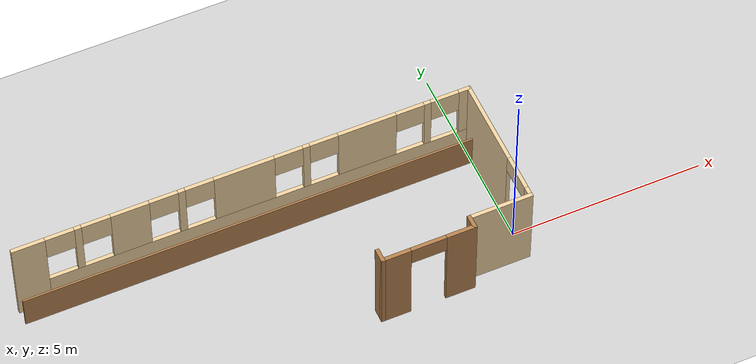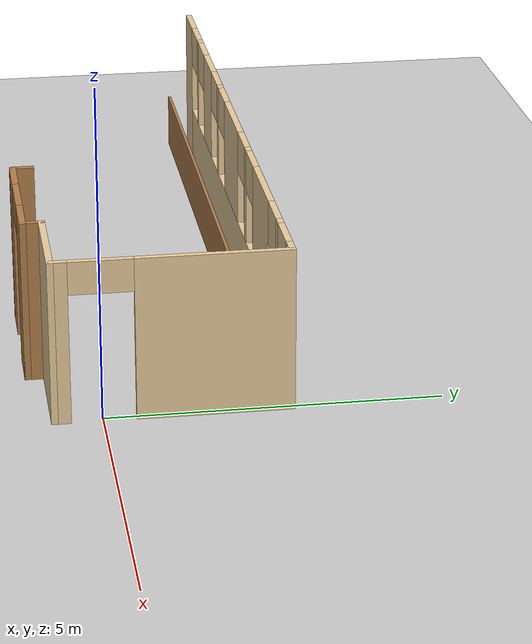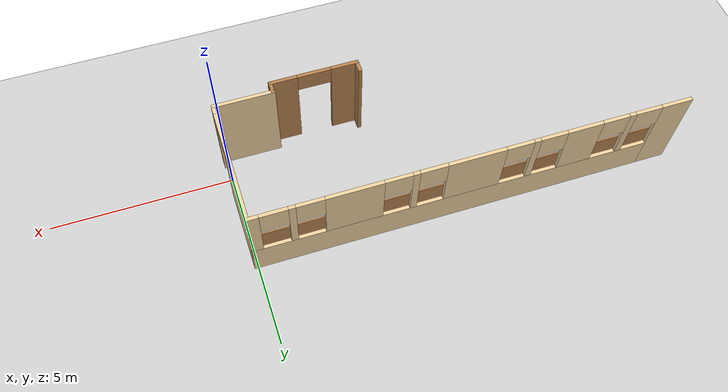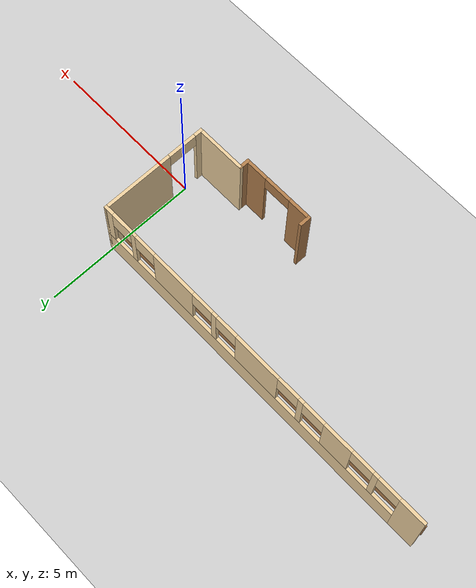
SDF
<sdf version="1.6">
 <world name="default">
  <model name="ground_plane">
   <static>1</static>
   <link name="link">
    <collision name="collision">
     <geometry><plane><normal>0 0 1</normal><size>100 100</size></plane></geometry>
     <surface><friction><ode><mu>100</mu><mu2>50</mu2></ode></friction></surface>
    </collision>
    <visual name="visual">
     <cast_shadows>0</cast_shadows>
     <geometry><plane><normal>0 0 1</normal><size>100 100</size></plane></geometry>
     <material>
      <script><uri>file://media/materials/scripts/gazebo.material</uri><name>Gazebo/Grey</name></script>
     </material>
    </visual>
   </link>
  </model>
  <model name="LawHall_Floor4.sdf">
   <link name="Wall_0">
    <pose>0 1.8775 0 0 -0 0</pose>
    <visual name="Wall_0_Visual_4">
     <pose>-1.606 0 1.72 0 -0 0</pose>
     <geometry><box><size>0.178 0.1 1.56</size></box></geometry>
     <material>
      <script><uri>file://media/materials/scripts/gazebo.material</uri><name>Gazebo/Grey</name></script>
      <ambient>0.921569 0.807843 0.615686 1</ambient>
      <diffuse>0.7 0.7 0.7 1</diffuse>
      <specular>0.01 0.01 0.01 1</specular>
      <emissive>0 0 0 1</emissive>
     </material>
    </visual>
    <visual name="Wall_0_Visual_15">
     <pose>2.034 0 2.158 0 -0 0</pose>
     <geometry><box><size>0.73 0.1 0.684</size></box></geometry>
     <material>
      <script><uri>file://media/materials/scripts/gazebo.material</uri><name>Gazebo/Grey</name></script>
      <ambient>0.921569 0.807843 0.615686 1</ambient>
      <diffuse>0.7 0.7 0.7 1</diffuse>
      <specular>0.01 0.01 0.01 1</specular>
      <emissive>0 0 0 1</emissive>
     </material>
    </visual>
    <visual name="Wall_0_Visual_0">
     <pose>-5.4555 0 1.25 0 -0 0</pose>
     <geometry><box><size>0.841 0.1 2.5</size></box></geometry>
     <material>
      <script><uri>file://media/materials/scripts/gazebo.material</uri><name>Gazebo/Grey</name></script>
      <ambient>0.921569 0.807843 0.615686 1</ambient>
      <diffuse>0.7 0.7 0.7 1</diffuse>
      <specular>0.01 0.01 0.01 1</specular>
      <emissive>0 0 0 1</emissive>
     </material>
    </visual>
    <visual name="Wall_0_Visual_7">
     <pose>3.154 0 1.72 0 -0 0</pose>
     <geometry><box><size>1.51 0.1 1.56</size></box></geometry>
     <material>
      <script><uri>file://media/materials/scripts/gazebo.material</uri><name>Gazebo/Grey</name></script>
      <ambient>0.921569 0.807843 0.615686 1</ambient>
      <diffuse>0.7 0.7 0.7 1</diffuse>
      <specular>0.01 0.01 0.01 1</specular>
      <emissive>0 0 0 1</emissive>
     </material>
    </visual>
    <visual name="Wall_0_Visual_17">
     <pose>5.184 0 2.158 0 -0 0</pose>
     <geometry><box><size>0.73 0.1 0.684</size></box></geometry>
     <material>
      <script><uri>file://media/materials/scripts/gazebo.material</uri><name>Gazebo/Grey</name></script>
      <ambient>0.921569 0.807843 0.615686 1</ambient>
      <diffuse>0.7 0.7 0.7 1</diffuse>
      <specular>0.01 0.01 0.01 1</specular>
      <emissive>0 0 0 1</emissive>
     </material>
    </visual>
    <visual name="Wall_0_Visual_6">
     <pose>1.5805 0 1.72 0 -0 0</pose>
     <geometry><box><size>0.177 0.1 1.56</size></box></geometry>
     <material>
      <script><uri>file://media/materials/scripts/gazebo.material</uri><name>Gazebo/Grey</name></script>
      <ambient>0.921569 0.807843 0.615686 1</ambient>
      <diffuse>0.7 0.7 0.7 1</diffuse>
      <specular>0.01 0.01 0.01 1</specular>
      <emissive>0 0 0 1</emissive>
     </material>
    </visual>
    <visual name="Wall_0_Visual_2">
     <pose>-4.216 0 1.72 0 -0 0</pose>
     <geometry><box><size>0.178 0.1 1.56</size></box></geometry>
     <material>
      <script><uri>file://media/materials/scripts/gazebo.material</uri><name>Gazebo/Grey</name></script>
      <ambient>0.921569 0.807843 0.615686 1</ambient>
      <diffuse>0.7 0.7 0.7 1</diffuse>
      <specular>0.01 0.01 0.01 1</specular>
      <emissive>0 0 0 1</emissive>
     </material>
    </visual>
    <visual name="Wall_0_Visual_9">
     <pose>5.7125 0 1.72 0 -0 0</pose>
     <geometry><box><size>0.327 0.1 1.56</size></box></geometry>
     <material>
      <script><uri>file://media/materials/scripts/gazebo.material</uri><name>Gazebo/Grey</name></script>
      <ambient>0.921569 0.807843 0.615686 1</ambient>
      <diffuse>0.7 0.7 0.7 1</diffuse>
      <specular>0.01 0.01 0.01 1</specular>
      <emissive>0 0 0 1</emissive>
     </material>
    </visual>
    <visual name="Wall_0_Visual_16">
     <pose>4.274 0 2.158 0 -0 0</pose>
     <geometry><box><size>0.73 0.1 0.684</size></box></geometry>
     <material>
      <script><uri>file://media/materials/scripts/gazebo.material</uri><name>Gazebo/Grey</name></script>
      <ambient>0.921569 0.807843 0.615686 1</ambient>
      <diffuse>0.7 0.7 0.7 1</diffuse>
      <specular>0.01 0.01 0.01 1</specular>
      <emissive>0 0 0 1</emissive>
     </material>
    </visual>
    <visual name="Wall_0_Visual_10">
     <pose>-4.67 0 2.158 0 -0 0</pose>
     <geometry><box><size>0.73 0.1 0.684</size></box></geometry>
     <material>
      <script><uri>file://media/materials/scripts/gazebo.material</uri><name>Gazebo/Grey</name></script>
      <ambient>0.921569 0.807843 0.615686 1</ambient>
      <diffuse>0.7 0.7 0.7 1</diffuse>
      <specular>0.01 0.01 0.01 1</specular>
      <emissive>0 0 0 1</emissive>
     </material>
    </visual>
    <visual name="Wall_0_Visual_11">
     <pose>-3.762 0 2.158 0 -0 0</pose>
     <geometry><box><size>0.73 0.1 0.684</size></box></geometry>
     <material>
      <script><uri>file://media/materials/scripts/gazebo.material</uri><name>Gazebo/Grey</name></script>
      <ambient>0.921569 0.807843 0.615686 1</ambient>
      <diffuse>0.7 0.7 0.7 1</diffuse>
      <specular>0.01 0.01 0.01 1</specular>
      <emissive>0 0 0 1</emissive>
     </material>
    </visual>
    <visual name="Wall_0_Visual_5">
     <pose>-0.0125 0 1.72 0 -0 0</pose>
     <geometry><box><size>1.549 0.1 1.56</size></box></geometry>
     <material>
      <script><uri>file://media/materials/scripts/gazebo.material</uri><name>Gazebo/Grey</name></script>
      <ambient>0.921569 0.807843 0.615686 1</ambient>
      <diffuse>0.7 0.7 0.7 1</diffuse>
      <specular>0.01 0.01 0.01 1</specular>
      <emissive>0 0 0 1</emissive>
     </material>
    </visual>
    <visual name="Wall_0_Visual_14">
     <pose>1.127 0 2.158 0 -0 0</pose>
     <geometry><box><size>0.73 0.1 0.684</size></box></geometry>
     <material>
      <script><uri>file://media/materials/scripts/gazebo.material</uri><name>Gazebo/Grey</name></script>
      <ambient>0.921569 0.807843 0.615686 1</ambient>
      <diffuse>0.7 0.7 0.7 1</diffuse>
      <specular>0.01 0.01 0.01 1</specular>
      <emissive>0 0 0 1</emissive>
     </material>
    </visual>
    <visual name="Wall_0_Visual_13">
     <pose>-1.152 0 2.158 0 -0 0</pose>
     <geometry><box><size>0.73 0.1 0.684</size></box></geometry>
     <material>
      <script><uri>file://media/materials/scripts/gazebo.material</uri><name>Gazebo/Grey</name></script>
      <ambient>0.921569 0.807843 0.615686 1</ambient>
      <diffuse>0.7 0.7 0.7 1</diffuse>
      <specular>0.01 0.01 0.01 1</specular>
      <emissive>0 0 0 1</emissive>
     </material>
    </visual>
    <visual name="Wall_0_Visual_12">
     <pose>-2.06 0 2.158 0 -0 0</pose>
     <geometry><box><size>0.73 0.1 0.684</size></box></geometry>
     <material>
      <script><uri>file://media/materials/scripts/gazebo.material</uri><name>Gazebo/Grey</name></script>
      <ambient>0.921569 0.807843 0.615686 1</ambient>
      <diffuse>0.7 0.7 0.7 1</diffuse>
      <specular>0.01 0.01 0.01 1</specular>
      <emissive>0 0 0 1</emissive>
     </material>
    </visual>
    <visual name="Wall_0_Visual_8">
     <pose>4.729 0 1.72 0 -0 0</pose>
     <geometry><box><size>0.18 0.1 1.56</size></box></geometry>
     <material>
      <script><uri>file://media/materials/scripts/gazebo.material</uri><name>Gazebo/Grey</name></script>
      <ambient>0.921569 0.807843 0.615686 1</ambient>
      <diffuse>0.7 0.7 0.7 1</diffuse>
      <specular>0.01 0.01 0.01 1</specular>
      <emissive>0 0 0 1</emissive>
     </material>
    </visual>
    <visual name="Wall_0_Visual_3">
     <pose>-2.911 0 1.72 0 -0 0</pose>
     <geometry><box><size>0.972 0.1 1.56</size></box></geometry>
     <material>
      <script><uri>file://media/materials/scripts/gazebo.material</uri><name>Gazebo/Grey</name></script>
      <ambient>0.921569 0.807843 0.615686 1</ambient>
      <diffuse>0.7 0.7 0.7 1</diffuse>
      <specular>0.01 0.01 0.01 1</specular>
      <emissive>0 0 0 1</emissive>
     </material>
    </visual>
    <visual name="Wall_0_Visual_1">
     <pose>0.4205 0 0.47 0 -0 0</pose>
     <geometry><box><size>10.911 0.1 0.94</size></box></geometry>
     <material>
      <script><uri>file://media/materials/scripts/gazebo.material</uri><name>Gazebo/Grey</name></script>
      <ambient>0.921569 0.807843 0.615686 1</ambient>
      <diffuse>0.7 0.7 0.7 1</diffuse>
      <specular>0.01 0.01 0.01 1</specular>
      <emissive>0 0 0 1</emissive>
     </material>
    </visual>
    <collision name="Wall_0_Collision_11">
     <pose>-3.762 0 2.158 0 -0 0</pose>
     <geometry><box><size>0.73 0.1 0.684</size></box></geometry>
     <surface>
      <friction>
       <ode><mu>1</mu><mu2>1</mu2><fdir1>0 0 0</fdir1><slip1>0</slip1><slip2>0</slip2></ode>
       <torsional>
        <coefficient>1</coefficient>
        <patch_radius>0</patch_radius>
        <surface_radius>0</surface_radius>
        <use_patch_radius>1</use_patch_radius>
        <ode><slip>0</slip></ode>
       </torsional>
      </friction>
      <bounce><restitution_coefficient>0</restitution_coefficient><threshold>1e+06</threshold></bounce>
      <contact>
       <collide_without_contact>0</collide_without_contact>
       <collide_without_contact_bitmask>1</collide_without_contact_bitmask>
       <collide_bitmask>1</collide_bitmask>
       <ode>
        <soft_cfm>0</soft_cfm>
        <soft_erp>0.2</soft_erp>
        <kp>1e+13</kp>
        <kd>1</kd>
        <max_vel>0.01</max_vel>
        <min_depth>0</min_depth>
       </ode>
       <bullet>
        <split_impulse>1</split_impulse>
        <split_impulse_penetration_threshold>-0.01</split_impulse_penetration_threshold>
        <soft_cfm>0</soft_cfm>
        <soft_erp>0.2</soft_erp>
        <kp>1e+13</kp>
        <kd>1</kd>
       </bullet>
      </contact>
     </surface>
    </collision>
    <collision name="Wall_0_Collision_7">
     <pose>3.154 0 1.72 0 -0 0</pose>
     <geometry><box><size>1.51 0.1 1.56</size></box></geometry>
     <surface>
      <friction>
       <ode><mu>1</mu><mu2>1</mu2><fdir1>0 0 0</fdir1><slip1>0</slip1><slip2>0</slip2></ode>
       <torsional>
        <coefficient>1</coefficient>
        <patch_radius>0</patch_radius>
        <surface_radius>0</surface_radius>
        <use_patch_radius>1</use_patch_radius>
        <ode><slip>0</slip></ode>
       </torsional>
      </friction>
      <bounce><restitution_coefficient>0</restitution_coefficient><threshold>1e+06</threshold></bounce>
      <contact>
       <collide_without_contact>0</collide_without_contact>
       <collide_without_contact_bitmask>1</collide_without_contact_bitmask>
       <collide_bitmask>1</collide_bitmask>
       <ode>
        <soft_cfm>0</soft_cfm>
        <soft_erp>0.2</soft_erp>
        <kp>1e+13</kp>
        <kd>1</kd>
        <max_vel>0.01</max_vel>
        <min_depth>0</min_depth>
       </ode>
       <bullet>
        <split_impulse>1</split_impulse>
        <split_impulse_penetration_threshold>-0.01</split_impulse_penetration_threshold>
        <soft_cfm>0</soft_cfm>
        <soft_erp>0.2</soft_erp>
        <kp>1e+13</kp>
        <kd>1</kd>
       </bullet>
      </contact>
     </surface>
    </collision>
    <collision name="Wall_0_Collision_14">
     <pose>1.127 0 2.158 0 -0 0</pose>
     <geometry><box><size>0.73 0.1 0.684</size></box></geometry>
     <surface>
      <friction>
       <ode><mu>1</mu><mu2>1</mu2><fdir1>0 0 0</fdir1><slip1>0</slip1><slip2>0</slip2></ode>
       <torsional>
        <coefficient>1</coefficient>
        <patch_radius>0</patch_radius>
        <surface_radius>0</surface_radius>
        <use_patch_radius>1</use_patch_radius>
        <ode><slip>0</slip></ode>
       </torsional>
      </friction>
      <bounce><restitution_coefficient>0</restitution_coefficient><threshold>1e+06</threshold></bounce>
      <contact>
       <collide_without_contact>0</collide_without_contact>
       <collide_without_contact_bitmask>1</collide_without_contact_bitmask>
       <collide_bitmask>1</collide_bitmask>
       <ode>
        <soft_cfm>0</soft_cfm>
        <soft_erp>0.2</soft_erp>
        <kp>1e+13</kp>
        <kd>1</kd>
        <max_vel>0.01</max_vel>
        <min_depth>0</min_depth>
       </ode>
       <bullet>
        <split_impulse>1</split_impulse>
        <split_impulse_penetration_threshold>-0.01</split_impulse_penetration_threshold>
        <soft_cfm>0</soft_cfm>
        <soft_erp>0.2</soft_erp>
        <kp>1e+13</kp>
        <kd>1</kd>
       </bullet>
      </contact>
     </surface>
    </collision>
    <collision name="Wall_0_Collision_5">
     <pose>-0.0125 0 1.72 0 -0 0</pose>
     <geometry><box><size>1.549 0.1 1.56</size></box></geometry>
     <surface>
      <friction>
       <ode><mu>1</mu><mu2>1</mu2><fdir1>0 0 0</fdir1><slip1>0</slip1><slip2>0</slip2></ode>
       <torsional>
        <coefficient>1</coefficient>
        <patch_radius>0</patch_radius>
        <surface_radius>0</surface_radius>
        <use_patch_radius>1</use_patch_radius>
        <ode><slip>0</slip></ode>
       </torsional>
      </friction>
      <bounce><restitution_coefficient>0</restitution_coefficient><threshold>1e+06</threshold></bounce>
      <contact>
       <collide_without_contact>0</collide_without_contact>
       <collide_without_contact_bitmask>1</collide_without_contact_bitmask>
       <collide_bitmask>1</collide_bitmask>
       <ode>
        <soft_cfm>0</soft_cfm>
        <soft_erp>0.2</soft_erp>
        <kp>1e+13</kp>
        <kd>1</kd>
        <max_vel>0.01</max_vel>
        <min_depth>0</min_depth>
       </ode>
       <bullet>
        <split_impulse>1</split_impulse>
        <split_impulse_penetration_threshold>-0.01</split_impulse_penetration_threshold>
        <soft_cfm>0</soft_cfm>
        <soft_erp>0.2</soft_erp>
        <kp>1e+13</kp>
        <kd>1</kd>
       </bullet>
      </contact>
     </surface>
    </collision>
    <collision name="Wall_0_Collision_9">
     <pose>5.7125 0 1.72 0 -0 0</pose>
     <geometry><box><size>0.327 0.1 1.56</size></box></geometry>
     <surface>
      <friction>
       <ode><mu>1</mu><mu2>1</mu2><fdir1>0 0 0</fdir1><slip1>0</slip1><slip2>0</slip2></ode>
       <torsional>
        <coefficient>1</coefficient>
        <patch_radius>0</patch_radius>
        <surface_radius>0</surface_radius>
        <use_patch_radius>1</use_patch_radius>
        <ode><slip>0</slip></ode>
       </torsional>
      </friction>
      <bounce><restitution_coefficient>0</restitution_coefficient><threshold>1e+06</threshold></bounce>
      <contact>
       <collide_without_contact>0</collide_without_contact>
       <collide_without_contact_bitmask>1</collide_without_contact_bitmask>
       <collide_bitmask>1</collide_bitmask>
       <ode>
        <soft_cfm>0</soft_cfm>
        <soft_erp>0.2</soft_erp>
        <kp>1e+13</kp>
        <kd>1</kd>
        <max_vel>0.01</max_vel>
        <min_depth>0</min_depth>
       </ode>
       <bullet>
        <split_impulse>1</split_impulse>
        <split_impulse_penetration_threshold>-0.01</split_impulse_penetration_threshold>
        <soft_cfm>0</soft_cfm>
        <soft_erp>0.2</soft_erp>
        <kp>1e+13</kp>
        <kd>1</kd>
       </bullet>
      </contact>
     </surface>
    </collision>
    <collision name="Wall_0_Collision_2">
     <pose>-4.216 0 1.72 0 -0 0</pose>
     <geometry><box><size>0.178 0.1 1.56</size></box></geometry>
     <surface>
      <friction>
       <ode><mu>1</mu><mu2>1</mu2><fdir1>0 0 0</fdir1><slip1>0</slip1><slip2>0</slip2></ode>
       <torsional>
        <coefficient>1</coefficient>
        <patch_radius>0</patch_radius>
        <surface_radius>0</surface_radius>
        <use_patch_radius>1</use_patch_radius>
        <ode><slip>0</slip></ode>
       </torsional>
      </friction>
      <bounce><restitution_coefficient>0</restitution_coefficient><threshold>1e+06</threshold></bounce>
      <contact>
       <collide_without_contact>0</collide_without_contact>
       <collide_without_contact_bitmask>1</collide_without_contact_bitmask>
       <collide_bitmask>1</collide_bitmask>
       <ode>
        <soft_cfm>0</soft_cfm>
        <soft_erp>0.2</soft_erp>
        <kp>1e+13</kp>
        <kd>1</kd>
        <max_vel>0.01</max_vel>
        <min_depth>0</min_depth>
       </ode>
       <bullet>
        <split_impulse>1</split_impulse>
        <split_impulse_penetration_threshold>-0.01</split_impulse_penetration_threshold>
        <soft_cfm>0</soft_cfm>
        <soft_erp>0.2</soft_erp>
        <kp>1e+13</kp>
        <kd>1</kd>
       </bullet>
      </contact>
     </surface>
    </collision>
    <collision name="Wall_0_Collision_3">
     <pose>-2.911 0 1.72 0 -0 0</pose>
     <geometry><box><size>0.972 0.1 1.56</size></box></geometry>
     <surface>
      <friction>
       <ode><mu>1</mu><mu2>1</mu2><fdir1>0 0 0</fdir1><slip1>0</slip1><slip2>0</slip2></ode>
       <torsional>
        <coefficient>1</coefficient>
        <patch_radius>0</patch_radius>
        <surface_radius>0</surface_radius>
        <use_patch_radius>1</use_patch_radius>
        <ode><slip>0</slip></ode>
       </torsional>
      </friction>
      <bounce><restitution_coefficient>0</restitution_coefficient><threshold>1e+06</threshold></bounce>
      <contact>
       <collide_without_contact>0</collide_without_contact>
       <collide_without_contact_bitmask>1</collide_without_contact_bitmask>
       <collide_bitmask>1</collide_bitmask>
       <ode>
        <soft_cfm>0</soft_cfm>
        <soft_erp>0.2</soft_erp>
        <kp>1e+13</kp>
        <kd>1</kd>
        <max_vel>0.01</max_vel>
        <min_depth>0</min_depth>
       </ode>
       <bullet>
        <split_impulse>1</split_impulse>
        <split_impulse_penetration_threshold>-0.01</split_impulse_penetration_threshold>
        <soft_cfm>0</soft_cfm>
        <soft_erp>0.2</soft_erp>
        <kp>1e+13</kp>
        <kd>1</kd>
       </bullet>
      </contact>
     </surface>
    </collision>
    <collision name="Wall_0_Collision_6">
     <pose>1.5805 0 1.72 0 -0 0</pose>
     <geometry><box><size>0.177 0.1 1.56</size></box></geometry>
     <surface>
      <friction>
       <ode><mu>1</mu><mu2>1</mu2><fdir1>0 0 0</fdir1><slip1>0</slip1><slip2>0</slip2></ode>
       <torsional>
        <coefficient>1</coefficient>
        <patch_radius>0</patch_radius>
        <surface_radius>0</surface_radius>
        <use_patch_radius>1</use_patch_radius>
        <ode><slip>0</slip></ode>
       </torsional>
      </friction>
      <bounce><restitution_coefficient>0</restitution_coefficient><threshold>1e+06</threshold></bounce>
      <contact>
       <collide_without_contact>0</collide_without_contact>
       <collide_without_contact_bitmask>1</collide_without_contact_bitmask>
       <collide_bitmask>1</collide_bitmask>
       <ode>
        <soft_cfm>0</soft_cfm>
        <soft_erp>0.2</soft_erp>
        <kp>1e+13</kp>
        <kd>1</kd>
        <max_vel>0.01</max_vel>
        <min_depth>0</min_depth>
       </ode>
       <bullet>
        <split_impulse>1</split_impulse>
        <split_impulse_penetration_threshold>-0.01</split_impulse_penetration_threshold>
        <soft_cfm>0</soft_cfm>
        <soft_erp>0.2</soft_erp>
        <kp>1e+13</kp>
        <kd>1</kd>
       </bullet>
      </contact>
     </surface>
    </collision>
    <collision name="Wall_0_Collision_13">
     <pose>-1.152 0 2.158 0 -0 0</pose>
     <geometry><box><size>0.73 0.1 0.684</size></box></geometry>
     <surface>
      <friction>
       <ode><mu>1</mu><mu2>1</mu2><fdir1>0 0 0</fdir1><slip1>0</slip1><slip2>0</slip2></ode>
       <torsional>
        <coefficient>1</coefficient>
        <patch_radius>0</patch_radius>
        <surface_radius>0</surface_radius>
        <use_patch_radius>1</use_patch_radius>
        <ode><slip>0</slip></ode>
       </torsional>
      </friction>
      <bounce><restitution_coefficient>0</restitution_coefficient><threshold>1e+06</threshold></bounce>
      <contact>
       <collide_without_contact>0</collide_without_contact>
       <collide_without_contact_bitmask>1</collide_without_contact_bitmask>
       <collide_bitmask>1</collide_bitmask>
       <ode>
        <soft_cfm>0</soft_cfm>
        <soft_erp>0.2</soft_erp>
        <kp>1e+13</kp>
        <kd>1</kd>
        <max_vel>0.01</max_vel>
        <min_depth>0</min_depth>
       </ode>
       <bullet>
        <split_impulse>1</split_impulse>
        <split_impulse_penetration_threshold>-0.01</split_impulse_penetration_threshold>
        <soft_cfm>0</soft_cfm>
        <soft_erp>0.2</soft_erp>
        <kp>1e+13</kp>
        <kd>1</kd>
       </bullet>
      </contact>
     </surface>
    </collision>
    <collision name="Wall_0_Collision_15">
     <pose>2.034 0 2.158 0 -0 0</pose>
     <geometry><box><size>0.73 0.1 0.684</size></box></geometry>
     <surface>
      <friction>
       <ode><mu>1</mu><mu2>1</mu2><fdir1>0 0 0</fdir1><slip1>0</slip1><slip2>0</slip2></ode>
       <torsional>
        <coefficient>1</coefficient>
        <patch_radius>0</patch_radius>
        <surface_radius>0</surface_radius>
        <use_patch_radius>1</use_patch_radius>
        <ode><slip>0</slip></ode>
       </torsional>
      </friction>
      <bounce><restitution_coefficient>0</restitution_coefficient><threshold>1e+06</threshold></bounce>
      <contact>
       <collide_without_contact>0</collide_without_contact>
       <collide_without_contact_bitmask>1</collide_without_contact_bitmask>
       <collide_bitmask>1</collide_bitmask>
       <ode>
        <soft_cfm>0</soft_cfm>
        <soft_erp>0.2</soft_erp>
        <kp>1e+13</kp>
        <kd>1</kd>
        <max_vel>0.01</max_vel>
        <min_depth>0</min_depth>
       </ode>
       <bullet>
        <split_impulse>1</split_impulse>
        <split_impulse_penetration_threshold>-0.01</split_impulse_penetration_threshold>
        <soft_cfm>0</soft_cfm>
        <soft_erp>0.2</soft_erp>
        <kp>1e+13</kp>
        <kd>1</kd>
       </bullet>
      </contact>
     </surface>
    </collision>
    <collision name="Wall_0_Collision_1">
     <pose>0.4205 0 0.47 0 -0 0</pose>
     <geometry><box><size>10.911 0.1 0.94</size></box></geometry>
     <surface>
      <friction>
       <ode><mu>1</mu><mu2>1</mu2><fdir1>0 0 0</fdir1><slip1>0</slip1><slip2>0</slip2></ode>
       <torsional>
        <coefficient>1</coefficient>
        <patch_radius>0</patch_radius>
        <surface_radius>0</surface_radius>
        <use_patch_radius>1</use_patch_radius>
        <ode><slip>0</slip></ode>
       </torsional>
      </friction>
      <bounce><restitution_coefficient>0</restitution_coefficient><threshold>1e+06</threshold></bounce>
      <contact>
       <collide_without_contact>0</collide_without_contact>
       <collide_without_contact_bitmask>1</collide_without_contact_bitmask>
       <collide_bitmask>1</collide_bitmask>
       <ode>
        <soft_cfm>0</soft_cfm>
        <soft_erp>0.2</soft_erp>
        <kp>1e+13</kp>
        <kd>1</kd>
        <max_vel>0.01</max_vel>
        <min_depth>0</min_depth>
       </ode>
       <bullet>
        <split_impulse>1</split_impulse>
        <split_impulse_penetration_threshold>-0.01</split_impulse_penetration_threshold>
        <soft_cfm>0</soft_cfm>
        <soft_erp>0.2</soft_erp>
        <kp>1e+13</kp>
        <kd>1</kd>
       </bullet>
      </contact>
     </surface>
    </collision>
    <collision name="Wall_0_Collision_16">
     <pose>4.274 0 2.158 0 -0 0</pose>
     <geometry><box><size>0.73 0.1 0.684</size></box></geometry>
     <surface>
      <friction>
       <ode><mu>1</mu><mu2>1</mu2><fdir1>0 0 0</fdir1><slip1>0</slip1><slip2>0</slip2></ode>
       <torsional>
        <coefficient>1</coefficient>
        <patch_radius>0</patch_radius>
        <surface_radius>0</surface_radius>
        <use_patch_radius>1</use_patch_radius>
        <ode><slip>0</slip></ode>
       </torsional>
      </friction>
      <bounce><restitution_coefficient>0</restitution_coefficient><threshold>1e+06</threshold></bounce>
      <contact>
       <collide_without_contact>0</collide_without_contact>
       <collide_without_contact_bitmask>1</collide_without_contact_bitmask>
       <collide_bitmask>1</collide_bitmask>
       <ode>
        <soft_cfm>0</soft_cfm>
        <soft_erp>0.2</soft_erp>
        <kp>1e+13</kp>
        <kd>1</kd>
        <max_vel>0.01</max_vel>
        <min_depth>0</min_depth>
       </ode>
       <bullet>
        <split_impulse>1</split_impulse>
        <split_impulse_penetration_threshold>-0.01</split_impulse_penetration_threshold>
        <soft_cfm>0</soft_cfm>
        <soft_erp>0.2</soft_erp>
        <kp>1e+13</kp>
        <kd>1</kd>
       </bullet>
      </contact>
     </surface>
    </collision>
    <collision name="Wall_0_Collision_12">
     <pose>-2.06 0 2.158 0 -0 0</pose>
     <geometry><box><size>0.73 0.1 0.684</size></box></geometry>
     <surface>
      <friction>
       <ode><mu>1</mu><mu2>1</mu2><fdir1>0 0 0</fdir1><slip1>0</slip1><slip2>0</slip2></ode>
       <torsional>
        <coefficient>1</coefficient>
        <patch_radius>0</patch_radius>
        <surface_radius>0</surface_radius>
        <use_patch_radius>1</use_patch_radius>
        <ode><slip>0</slip></ode>
       </torsional>
      </friction>
      <bounce><restitution_coefficient>0</restitution_coefficient><threshold>1e+06</threshold></bounce>
      <contact>
       <collide_without_contact>0</collide_without_contact>
       <collide_without_contact_bitmask>1</collide_without_contact_bitmask>
       <collide_bitmask>1</collide_bitmask>
       <ode>
        <soft_cfm>0</soft_cfm>
        <soft_erp>0.2</soft_erp>
        <kp>1e+13</kp>
        <kd>1</kd>
        <max_vel>0.01</max_vel>
        <min_depth>0</min_depth>
       </ode>
       <bullet>
        <split_impulse>1</split_impulse>
        <split_impulse_penetration_threshold>-0.01</split_impulse_penetration_threshold>
        <soft_cfm>0</soft_cfm>
        <soft_erp>0.2</soft_erp>
        <kp>1e+13</kp>
        <kd>1</kd>
       </bullet>
      </contact>
     </surface>
    </collision>
    <collision name="Wall_0_Collision_4">
     <pose>-1.606 0 1.72 0 -0 0</pose>
     <geometry><box><size>0.178 0.1 1.56</size></box></geometry>
     <surface>
      <friction>
       <ode><mu>1</mu><mu2>1</mu2><fdir1>0 0 0</fdir1><slip1>0</slip1><slip2>0</slip2></ode>
       <torsional>
        <coefficient>1</coefficient>
        <patch_radius>0</patch_radius>
        <surface_radius>0</surface_radius>
        <use_patch_radius>1</use_patch_radius>
        <ode><slip>0</slip></ode>
       </torsional>
      </friction>
      <bounce><restitution_coefficient>0</restitution_coefficient><threshold>1e+06</threshold></bounce>
      <contact>
       <collide_without_contact>0</collide_without_contact>
       <collide_without_contact_bitmask>1</collide_without_contact_bitmask>
       <collide_bitmask>1</collide_bitmask>
       <ode>
        <soft_cfm>0</soft_cfm>
        <soft_erp>0.2</soft_erp>
        <kp>1e+13</kp>
        <kd>1</kd>
        <max_vel>0.01</max_vel>
        <min_depth>0</min_depth>
       </ode>
       <bullet>
        <split_impulse>1</split_impulse>
        <split_impulse_penetration_threshold>-0.01</split_impulse_penetration_threshold>
        <soft_cfm>0</soft_cfm>
        <soft_erp>0.2</soft_erp>
        <kp>1e+13</kp>
        <kd>1</kd>
       </bullet>
      </contact>
     </surface>
    </collision>
    <collision name="Wall_0_Collision_17">
     <pose>5.184 0 2.158 0 -0 0</pose>
     <geometry><box><size>0.73 0.1 0.684</size></box></geometry>
     <surface>
      <friction>
       <ode><mu>1</mu><mu2>1</mu2><fdir1>0 0 0</fdir1><slip1>0</slip1><slip2>0</slip2></ode>
       <torsional>
        <coefficient>1</coefficient>
        <patch_radius>0</patch_radius>
        <surface_radius>0</surface_radius>
        <use_patch_radius>1</use_patch_radius>
        <ode><slip>0</slip></ode>
       </torsional>
      </friction>
      <bounce><restitution_coefficient>0</restitution_coefficient><threshold>1e+06</threshold></bounce>
      <contact>
       <collide_without_contact>0</collide_without_contact>
       <collide_without_contact_bitmask>1</collide_without_contact_bitmask>
       <collide_bitmask>1</collide_bitmask>
       <ode>
        <soft_cfm>0</soft_cfm>
        <soft_erp>0.2</soft_erp>
        <kp>1e+13</kp>
        <kd>1</kd>
        <max_vel>0.01</max_vel>
        <min_depth>0</min_depth>
       </ode>
       <bullet>
        <split_impulse>1</split_impulse>
        <split_impulse_penetration_threshold>-0.01</split_impulse_penetration_threshold>
        <soft_cfm>0</soft_cfm>
        <soft_erp>0.2</soft_erp>
        <kp>1e+13</kp>
        <kd>1</kd>
       </bullet>
      </contact>
     </surface>
    </collision>
    <collision name="Wall_0_Collision_8">
     <pose>4.729 0 1.72 0 -0 0</pose>
     <geometry><box><size>0.18 0.1 1.56</size></box></geometry>
     <surface>
      <friction>
       <ode><mu>1</mu><mu2>1</mu2><fdir1>0 0 0</fdir1><slip1>0</slip1><slip2>0</slip2></ode>
       <torsional>
        <coefficient>1</coefficient>
        <patch_radius>0</patch_radius>
        <surface_radius>0</surface_radius>
        <use_patch_radius>1</use_patch_radius>
        <ode><slip>0</slip></ode>
       </torsional>
      </friction>
      <bounce><restitution_coefficient>0</restitution_coefficient><threshold>1e+06</threshold></bounce>
      <contact>
       <collide_without_contact>0</collide_without_contact>
       <collide_without_contact_bitmask>1</collide_without_contact_bitmask>
       <collide_bitmask>1</collide_bitmask>
       <ode>
        <soft_cfm>0</soft_cfm>
        <soft_erp>0.2</soft_erp>
        <kp>1e+13</kp>
        <kd>1</kd>
        <max_vel>0.01</max_vel>
        <min_depth>0</min_depth>
       </ode>
       <bullet>
        <split_impulse>1</split_impulse>
        <split_impulse_penetration_threshold>-0.01</split_impulse_penetration_threshold>
        <soft_cfm>0</soft_cfm>
        <soft_erp>0.2</soft_erp>
        <kp>1e+13</kp>
        <kd>1</kd>
       </bullet>
      </contact>
     </surface>
    </collision>
    <collision name="Wall_0_Collision_0">
     <pose>-5.4555 0 1.25 0 -0 0</pose>
     <geometry><box><size>0.841 0.1 2.5</size></box></geometry>
     <surface>
      <friction>
       <ode><mu>1</mu><mu2>1</mu2><fdir1>0 0 0</fdir1><slip1>0</slip1><slip2>0</slip2></ode>
       <torsional>
        <coefficient>1</coefficient>
        <patch_radius>0</patch_radius>
        <surface_radius>0</surface_radius>
        <use_patch_radius>1</use_patch_radius>
        <ode><slip>0</slip></ode>
       </torsional>
      </friction>
      <bounce><restitution_coefficient>0</restitution_coefficient><threshold>1e+06</threshold></bounce>
      <contact>
       <collide_without_contact>0</collide_without_contact>
       <collide_without_contact_bitmask>1</collide_without_contact_bitmask>
       <collide_bitmask>1</collide_bitmask>
       <ode>
        <soft_cfm>0</soft_cfm>
        <soft_erp>0.2</soft_erp>
        <kp>1e+13</kp>
        <kd>1</kd>
        <max_vel>0.01</max_vel>
        <min_depth>0</min_depth>
       </ode>
       <bullet>
        <split_impulse>1</split_impulse>
        <split_impulse_penetration_threshold>-0.01</split_impulse_penetration_threshold>
        <soft_cfm>0</soft_cfm>
        <soft_erp>0.2</soft_erp>
        <kp>1e+13</kp>
        <kd>1</kd>
       </bullet>
      </contact>
     </surface>
    </collision>
    <collision name="Wall_0_Collision_10">
     <pose>-4.67 0 2.158 0 -0 0</pose>
     <geometry><box><size>0.73 0.1 0.684</size></box></geometry>
     <surface>
      <friction>
       <ode><mu>1</mu><mu2>1</mu2><fdir1>0 0 0</fdir1><slip1>0</slip1><slip2>0</slip2></ode>
       <torsional>
        <coefficient>1</coefficient>
        <patch_radius>0</patch_radius>
        <surface_radius>0</surface_radius>
        <use_patch_radius>1</use_patch_radius>
        <ode><slip>0</slip></ode>
       </torsional>
      </friction>
      <bounce><restitution_coefficient>0</restitution_coefficient><threshold>1e+06</threshold></bounce>
      <contact>
       <collide_without_contact>0</collide_without_contact>
       <collide_without_contact_bitmask>1</collide_without_contact_bitmask>
       <collide_bitmask>1</collide_bitmask>
       <ode>
        <soft_cfm>0</soft_cfm>
        <soft_erp>0.2</soft_erp>
        <kp>1e+13</kp>
        <kd>1</kd>
        <max_vel>0.01</max_vel>
        <min_depth>0</min_depth>
       </ode>
       <bullet>
        <split_impulse>1</split_impulse>
        <split_impulse_penetration_threshold>-0.01</split_impulse_penetration_threshold>
        <soft_cfm>0</soft_cfm>
        <soft_erp>0.2</soft_erp>
        <kp>1e+13</kp>
        <kd>1</kd>
       </bullet>
      </contact>
     </surface>
    </collision>
   </link>
   <link name="Wall_12">
    <pose>4.251 -1.712 0 0 0 -1.5708</pose>
    <visual name="Wall_12_Visual">
     <pose>0 0 1.25 0 -0 0</pose>
     <geometry><box><size>0.379 0.1 2.5</size></box></geometry>
     <material>
      <script><uri>file://media/materials/scripts/gazebo.material</uri><name>Gazebo/Wood</name></script>
      <ambient>1 1 1 1</ambient>
      <diffuse>1 1 1 1</diffuse>
      <specular>0.2 0.2 0.2 1</specular>
      <emissive>0 0 0 1</emissive>
     </material>
    </visual>
    <collision name="Wall_12_Collision">
     <pose>0 0 1.25 0 -0 0</pose>
     <geometry><box><size>0.379 0.1 2.5</size></box></geometry>
     <surface>
      <friction>
       <ode><mu>1</mu><mu2>1</mu2><fdir1>0 0 0</fdir1><slip1>0</slip1><slip2>0</slip2></ode>
       <torsional>
        <coefficient>1</coefficient>
        <patch_radius>0</patch_radius>
        <surface_radius>0</surface_radius>
        <use_patch_radius>1</use_patch_radius>
        <ode><slip>0</slip></ode>
       </torsional>
      </friction>
      <bounce><restitution_coefficient>0</restitution_coefficient><threshold>1e+06</threshold></bounce>
      <contact>
       <collide_without_contact>0</collide_without_contact>
       <collide_without_contact_bitmask>1</collide_without_contact_bitmask>
       <collide_bitmask>1</collide_bitmask>
       <ode>
        <soft_cfm>0</soft_cfm>
        <soft_erp>0.2</soft_erp>
        <kp>1e+13</kp>
        <kd>1</kd>
        <max_vel>0.01</max_vel>
        <min_depth>0</min_depth>
       </ode>
       <bullet>
        <split_impulse>1</split_impulse>
        <split_impulse_penetration_threshold>-0.01</split_impulse_penetration_threshold>
        <soft_cfm>0</soft_cfm>
        <soft_erp>0.2</soft_erp>
        <kp>1e+13</kp>
        <kd>1</kd>
       </bullet>
      </contact>
     </surface>
    </collision>
   </link>
   <link name="Wall_14">
    <pose>3.078 -1.8515 0 0 -0 3.14159</pose>
    <visual name="Wall_14_Visual_0">
     <pose>-0.836227 0 1.25 0 -0 0</pose>
     <geometry><box><size>0.773547 0.1 2.5</size></box></geometry>
     <material>
      <script><uri>file://media/materials/scripts/gazebo.material</uri><name>Gazebo/Wood</name></script>
      <ambient>1 1 1 1</ambient>
      <diffuse>1 1 1 1</diffuse>
      <specular>0.2 0.2 0.2 1</specular>
      <emissive>0 0 0 1</emissive>
     </material>
    </visual>
    <visual name="Wall_14_Visual_2">
     <pose>0.005547 0 2.25 0 -0 0</pose>
     <geometry><box><size>0.91 0.1 0.5</size></box></geometry>
     <material>
      <script><uri>file://media/materials/scripts/gazebo.material</uri><name>Gazebo/Wood</name></script>
      <ambient>1 1 1 1</ambient>
      <diffuse>1 1 1 1</diffuse>
      <specular>0.2 0.2 0.2 1</specular>
      <emissive>0 0 0 1</emissive>
     </material>
    </visual>
    <visual name="Wall_14_Visual_1">
     <pose>0.841773 0 1.25 0 -0 0</pose>
     <geometry><box><size>0.762453 0.1 2.5</size></box></geometry>
     <material>
      <script><uri>file://media/materials/scripts/gazebo.material</uri><name>Gazebo/Wood</name></script>
      <ambient>1 1 1 1</ambient>
      <diffuse>1 1 1 1</diffuse>
      <specular>0.2 0.2 0.2 1</specular>
      <emissive>0 0 0 1</emissive>
     </material>
    </visual>
    <collision name="Wall_14_Collision_1">
     <pose>0.841773 0 1.25 0 -0 0</pose>
     <geometry><box><size>0.762453 0.1 2.5</size></box></geometry>
     <surface>
      <friction>
       <ode><mu>1</mu><mu2>1</mu2><fdir1>0 0 0</fdir1><slip1>0</slip1><slip2>0</slip2></ode>
       <torsional>
        <coefficient>1</coefficient>
        <patch_radius>0</patch_radius>
        <surface_radius>0</surface_radius>
        <use_patch_radius>1</use_patch_radius>
        <ode><slip>0</slip></ode>
       </torsional>
      </friction>
      <bounce><restitution_coefficient>0</restitution_coefficient><threshold>1e+06</threshold></bounce>
      <contact>
       <collide_without_contact>0</collide_without_contact>
       <collide_without_contact_bitmask>1</collide_without_contact_bitmask>
       <collide_bitmask>1</collide_bitmask>
       <ode>
        <soft_cfm>0</soft_cfm>
        <soft_erp>0.2</soft_erp>
        <kp>1e+13</kp>
        <kd>1</kd>
        <max_vel>0.01</max_vel>
        <min_depth>0</min_depth>
       </ode>
       <bullet>
        <split_impulse>1</split_impulse>
        <split_impulse_penetration_threshold>-0.01</split_impulse_penetration_threshold>
        <soft_cfm>0</soft_cfm>
        <soft_erp>0.2</soft_erp>
        <kp>1e+13</kp>
        <kd>1</kd>
       </bullet>
      </contact>
     </surface>
    </collision>
    <collision name="Wall_14_Collision_2">
     <pose>0.005547 0 2.25 0 -0 0</pose>
     <geometry><box><size>0.91 0.1 0.5</size></box></geometry>
     <surface>
      <friction>
       <ode><mu>1</mu><mu2>1</mu2><fdir1>0 0 0</fdir1><slip1>0</slip1><slip2>0</slip2></ode>
       <torsional>
        <coefficient>1</coefficient>
        <patch_radius>0</patch_radius>
        <surface_radius>0</surface_radius>
        <use_patch_radius>1</use_patch_radius>
        <ode><slip>0</slip></ode>
       </torsional>
      </friction>
      <bounce><restitution_coefficient>0</restitution_coefficient><threshold>1e+06</threshold></bounce>
      <contact>
       <collide_without_contact>0</collide_without_contact>
       <collide_without_contact_bitmask>1</collide_without_contact_bitmask>
       <collide_bitmask>1</collide_bitmask>
       <ode>
        <soft_cfm>0</soft_cfm>
        <soft_erp>0.2</soft_erp>
        <kp>1e+13</kp>
        <kd>1</kd>
        <max_vel>0.01</max_vel>
        <min_depth>0</min_depth>
       </ode>
       <bullet>
        <split_impulse>1</split_impulse>
        <split_impulse_penetration_threshold>-0.01</split_impulse_penetration_threshold>
        <soft_cfm>0</soft_cfm>
        <soft_erp>0.2</soft_erp>
        <kp>1e+13</kp>
        <kd>1</kd>
       </bullet>
      </contact>
     </surface>
    </collision>
    <collision name="Wall_14_Collision_0">
     <pose>-0.836227 0 1.25 0 -0 0</pose>
     <geometry><box><size>0.773547 0.1 2.5</size></box></geometry>
     <surface>
      <friction>
       <ode><mu>1</mu><mu2>1</mu2><fdir1>0 0 0</fdir1><slip1>0</slip1><slip2>0</slip2></ode>
       <torsional>
        <coefficient>1</coefficient>
        <patch_radius>0</patch_radius>
        <surface_radius>0</surface_radius>
        <use_patch_radius>1</use_patch_radius>
        <ode><slip>0</slip></ode>
       </torsional>
      </friction>
      <bounce><restitution_coefficient>0</restitution_coefficient><threshold>1e+06</threshold></bounce>
      <contact>
       <collide_without_contact>0</collide_without_contact>
       <collide_without_contact_bitmask>1</collide_without_contact_bitmask>
       <collide_bitmask>1</collide_bitmask>
       <ode>
        <soft_cfm>0</soft_cfm>
        <soft_erp>0.2</soft_erp>
        <kp>1e+13</kp>
        <kd>1</kd>
        <max_vel>0.01</max_vel>
        <min_depth>0</min_depth>
       </ode>
       <bullet>
        <split_impulse>1</split_impulse>
        <split_impulse_penetration_threshold>-0.01</split_impulse_penetration_threshold>
        <soft_cfm>0</soft_cfm>
        <soft_erp>0.2</soft_erp>
        <kp>1e+13</kp>
        <kd>1</kd>
       </bullet>
      </contact>
     </surface>
    </collision>
   </link>
   <link name="Wall_15">
    <pose>1.905 -1.712 0 0 -0 1.5708</pose>
    <visual name="Wall_15_Visual">
     <pose>0 0 1.25 0 -0 0</pose>
     <geometry><box><size>0.379 0.1 2.5</size></box></geometry>
     <material>
      <script><uri>file://media/materials/scripts/gazebo.material</uri><name>Gazebo/Wood</name></script>
      <ambient>1 1 1 1</ambient>
      <diffuse>1 1 1 1</diffuse>
      <specular>0.2 0.2 0.2 1</specular>
      <emissive>0 0 0 1</emissive>
     </material>
    </visual>
    <collision name="Wall_15_Collision">
     <pose>0 0 1.25 0 -0 0</pose>
     <geometry><box><size>0.379 0.1 2.5</size></box></geometry>
     <surface>
      <friction>
       <ode><mu>1</mu><mu2>1</mu2><fdir1>0 0 0</fdir1><slip1>0</slip1><slip2>0</slip2></ode>
       <torsional>
        <coefficient>1</coefficient>
        <patch_radius>0</patch_radius>
        <surface_radius>0</surface_radius>
        <use_patch_radius>1</use_patch_radius>
        <ode><slip>0</slip></ode>
       </torsional>
      </friction>
      <bounce><restitution_coefficient>0</restitution_coefficient><threshold>1e+06</threshold></bounce>
      <contact>
       <collide_without_contact>0</collide_without_contact>
       <collide_without_contact_bitmask>1</collide_without_contact_bitmask>
       <collide_bitmask>1</collide_bitmask>
       <ode>
        <soft_cfm>0</soft_cfm>
        <soft_erp>0.2</soft_erp>
        <kp>1e+13</kp>
        <kd>1</kd>
        <max_vel>0.01</max_vel>
        <min_depth>0</min_depth>
       </ode>
       <bullet>
        <split_impulse>1</split_impulse>
        <split_impulse_penetration_threshold>-0.01</split_impulse_penetration_threshold>
        <soft_cfm>0</soft_cfm>
        <soft_erp>0.2</soft_erp>
        <kp>1e+13</kp>
        <kd>1</kd>
       </bullet>
      </contact>
     </surface>
    </collision>
   </link>
   <link name="Wall_31">
    <pose>0 1.4975 0 0 -0 0</pose>
    <visual name="Wall_31_Visual">
     <pose>0 0 0.47 0 -0 0</pose>
     <geometry><box><size>11.702 0.05 0.94</size></box></geometry>
     <material>
      <script><uri>file://media/materials/scripts/gazebo.material</uri><name>Gazebo/Wood</name></script>
      <ambient>1 1 1 1</ambient>
      <diffuse>1 1 1 1</diffuse>
      <specular>0.2 0.2 0.2 1</specular>
      <emissive>0 0 0 1</emissive>
     </material>
    </visual>
    <collision name="Wall_31_Collision">
     <pose>0 0 0.47 0 -0 0</pose>
     <geometry><box><size>11.702 0.05 0.94</size></box></geometry>
     <surface>
      <friction>
       <ode><mu>1</mu><mu2>1</mu2><fdir1>0 0 0</fdir1><slip1>0</slip1><slip2>0</slip2></ode>
       <torsional>
        <coefficient>1</coefficient>
        <patch_radius>0</patch_radius>
        <surface_radius>0</surface_radius>
        <use_patch_radius>1</use_patch_radius>
        <ode><slip>0</slip></ode>
       </torsional>
      </friction>
      <bounce><restitution_coefficient>0</restitution_coefficient><threshold>1e+06</threshold></bounce>
      <contact>
       <collide_without_contact>0</collide_without_contact>
       <collide_without_contact_bitmask>1</collide_without_contact_bitmask>
       <collide_bitmask>1</collide_bitmask>
       <ode>
        <soft_cfm>0</soft_cfm>
        <soft_erp>0.2</soft_erp>
        <kp>1e+13</kp>
        <kd>1</kd>
        <max_vel>0.01</max_vel>
        <min_depth>0</min_depth>
       </ode>
       <bullet>
        <split_impulse>1</split_impulse>
        <split_impulse_penetration_threshold>-0.01</split_impulse_penetration_threshold>
        <soft_cfm>0</soft_cfm>
        <soft_erp>0.2</soft_erp>
        <kp>1e+13</kp>
        <kd>1</kd>
       </bullet>
      </contact>
     </surface>
    </collision>
   </link>
   <link name="Wall_6">
    <pose>5.826 0.1525 0 0 0 -1.5708</pose>
    <visual name="Wall_6_Visual_0">
     <pose>-0.61784 0 1.25 0 -0 0</pose>
     <geometry><box><size>2.31432 0.1 2.5</size></box></geometry>
     <material>
      <script><uri>file://media/materials/scripts/gazebo.material</uri><name>Gazebo/Grey</name></script>
      <ambient>0.921569 0.807843 0.615686 1</ambient>
      <diffuse>0.7 0.7 0.7 1</diffuse>
      <specular>0.01 0.01 0.01 1</specular>
      <emissive>0 0 0 1</emissive>
     </material>
    </visual>
    <visual name="Wall_6_Visual_1">
     <pose>1.62966 0 1.25 0 -0 0</pose>
     <geometry><box><size>0.29068 0.1 2.5</size></box></geometry>
     <material>
      <script><uri>file://media/materials/scripts/gazebo.material</uri><name>Gazebo/Grey</name></script>
      <ambient>0.921569 0.807843 0.615686 1</ambient>
      <diffuse>0.7 0.7 0.7 1</diffuse>
      <specular>0.01 0.01 0.01 1</specular>
      <emissive>0 0 0 1</emissive>
     </material>
    </visual>
    <visual name="Wall_6_Visual_2">
     <pose>1.01182 0 2.25 0 -0 0</pose>
     <geometry><box><size>0.945 0.1 0.5</size></box></geometry>
     <material>
      <script><uri>file://media/materials/scripts/gazebo.material</uri><name>Gazebo/Grey</name></script>
      <ambient>0.921569 0.807843 0.615686 1</ambient>
      <diffuse>0.7 0.7 0.7 1</diffuse>
      <specular>0.01 0.01 0.01 1</specular>
      <emissive>0 0 0 1</emissive>
     </material>
    </visual>
    <collision name="Wall_6_Collision_1">
     <pose>1.62966 0 1.25 0 -0 0</pose>
     <geometry><box><size>0.29068 0.1 2.5</size></box></geometry>
     <surface>
      <friction>
       <ode><mu>1</mu><mu2>1</mu2><fdir1>0 0 0</fdir1><slip1>0</slip1><slip2>0</slip2></ode>
       <torsional>
        <coefficient>1</coefficient>
        <patch_radius>0</patch_radius>
        <surface_radius>0</surface_radius>
        <use_patch_radius>1</use_patch_radius>
        <ode><slip>0</slip></ode>
       </torsional>
      </friction>
      <bounce><restitution_coefficient>0</restitution_coefficient><threshold>1e+06</threshold></bounce>
      <contact>
       <collide_without_contact>0</collide_without_contact>
       <collide_without_contact_bitmask>1</collide_without_contact_bitmask>
       <collide_bitmask>1</collide_bitmask>
       <ode>
        <soft_cfm>0</soft_cfm>
        <soft_erp>0.2</soft_erp>
        <kp>1e+13</kp>
        <kd>1</kd>
        <max_vel>0.01</max_vel>
        <min_depth>0</min_depth>
       </ode>
       <bullet>
        <split_impulse>1</split_impulse>
        <split_impulse_penetration_threshold>-0.01</split_impulse_penetration_threshold>
        <soft_cfm>0</soft_cfm>
        <soft_erp>0.2</soft_erp>
        <kp>1e+13</kp>
        <kd>1</kd>
       </bullet>
      </contact>
     </surface>
    </collision>
    <collision name="Wall_6_Collision_0">
     <pose>-0.61784 0 1.25 0 -0 0</pose>
     <geometry><box><size>2.31432 0.1 2.5</size></box></geometry>
     <surface>
      <friction>
       <ode><mu>1</mu><mu2>1</mu2><fdir1>0 0 0</fdir1><slip1>0</slip1><slip2>0</slip2></ode>
       <torsional>
        <coefficient>1</coefficient>
        <patch_radius>0</patch_radius>
        <surface_radius>0</surface_radius>
        <use_patch_radius>1</use_patch_radius>
        <ode><slip>0</slip></ode>
       </torsional>
      </friction>
      <bounce><restitution_coefficient>0</restitution_coefficient><threshold>1e+06</threshold></bounce>
      <contact>
       <collide_without_contact>0</collide_without_contact>
       <collide_without_contact_bitmask>1</collide_without_contact_bitmask>
       <collide_bitmask>1</collide_bitmask>
       <ode>
        <soft_cfm>0</soft_cfm>
        <soft_erp>0.2</soft_erp>
        <kp>1e+13</kp>
        <kd>1</kd>
        <max_vel>0.01</max_vel>
        <min_depth>0</min_depth>
       </ode>
       <bullet>
        <split_impulse>1</split_impulse>
        <split_impulse_penetration_threshold>-0.01</split_impulse_penetration_threshold>
        <soft_cfm>0</soft_cfm>
        <soft_erp>0.2</soft_erp>
        <kp>1e+13</kp>
        <kd>1</kd>
       </bullet>
      </contact>
     </surface>
    </collision>
    <collision name="Wall_6_Collision_2">
     <pose>1.01182 0 2.25 0 -0 0</pose>
     <geometry><box><size>0.945 0.1 0.5</size></box></geometry>
     <surface>
      <friction>
       <ode><mu>1</mu><mu2>1</mu2><fdir1>0 0 0</fdir1><slip1>0</slip1><slip2>0</slip2></ode>
       <torsional>
        <coefficient>1</coefficient>
        <patch_radius>0</patch_radius>
        <surface_radius>0</surface_radius>
        <use_patch_radius>1</use_patch_radius>
        <ode><slip>0</slip></ode>
       </torsional>
      </friction>
      <bounce><restitution_coefficient>0</restitution_coefficient><threshold>1e+06</threshold></bounce>
      <contact>
       <collide_without_contact>0</collide_without_contact>
       <collide_without_contact_bitmask>1</collide_without_contact_bitmask>
       <collide_bitmask>1</collide_bitmask>
       <ode>
        <soft_cfm>0</soft_cfm>
        <soft_erp>0.2</soft_erp>
        <kp>1e+13</kp>
        <kd>1</kd>
        <max_vel>0.01</max_vel>
        <min_depth>0</min_depth>
       </ode>
       <bullet>
        <split_impulse>1</split_impulse>
        <split_impulse_penetration_threshold>-0.01</split_impulse_penetration_threshold>
        <soft_cfm>0</soft_cfm>
        <soft_erp>0.2</soft_erp>
        <kp>1e+13</kp>
        <kd>1</kd>
       </bullet>
      </contact>
     </surface>
    </collision>
   </link>
   <link name="Wall_8">
    <pose>5.0385 -1.5725 0 0 -0 3.14159</pose>
    <visual name="Wall_8_Visual">
     <pose>0 0 1.25 0 -0 0</pose>
     <geometry><box><size>1.675 0.1 2.5</size></box></geometry>
     <material>
      <script><uri>file://media/materials/scripts/gazebo.material</uri><name>Gazebo/Grey</name></script>
      <ambient>0.921569 0.807843 0.615686 1</ambient>
      <diffuse>0.7 0.7 0.7 1</diffuse>
      <specular>0.01 0.01 0.01 1</specular>
      <emissive>0 0 0 1</emissive>
     </material>
    </visual>
    <collision name="Wall_8_Collision">
     <pose>0 0 1.25 0 -0 0</pose>
     <geometry><box><size>1.675 0.1 2.5</size></box></geometry>
     <surface>
      <friction>
       <ode><mu>1</mu><mu2>1</mu2><fdir1>0 0 0</fdir1><slip1>0</slip1><slip2>0</slip2></ode>
       <torsional>
        <coefficient>1</coefficient>
        <patch_radius>0</patch_radius>
        <surface_radius>0</surface_radius>
        <use_patch_radius>1</use_patch_radius>
        <ode><slip>0</slip></ode>
       </torsional>
      </friction>
      <bounce><restitution_coefficient>0</restitution_coefficient><threshold>1e+06</threshold></bounce>
      <contact>
       <collide_without_contact>0</collide_without_contact>
       <collide_without_contact_bitmask>1</collide_without_contact_bitmask>
       <collide_bitmask>1</collide_bitmask>
       <ode>
        <soft_cfm>0</soft_cfm>
        <soft_erp>0.2</soft_erp>
        <kp>1e+13</kp>
        <kd>1</kd>
        <max_vel>0.01</max_vel>
        <min_depth>0</min_depth>
       </ode>
       <bullet>
        <split_impulse>1</split_impulse>
        <split_impulse_penetration_threshold>-0.01</split_impulse_penetration_threshold>
        <soft_cfm>0</soft_cfm>
        <soft_erp>0.2</soft_erp>
        <kp>1e+13</kp>
        <kd>1</kd>
       </bullet>
      </contact>
     </surface>
    </collision>
   </link>
   <static>1</static>
   <pose>-5.77166 0.8689 0 0 -0 0</pose>
  </model>
 </world>
</sdf>
